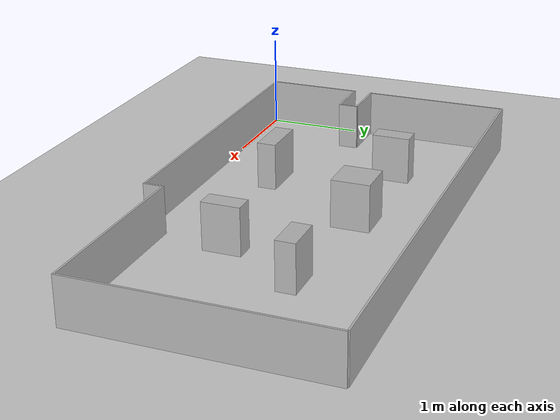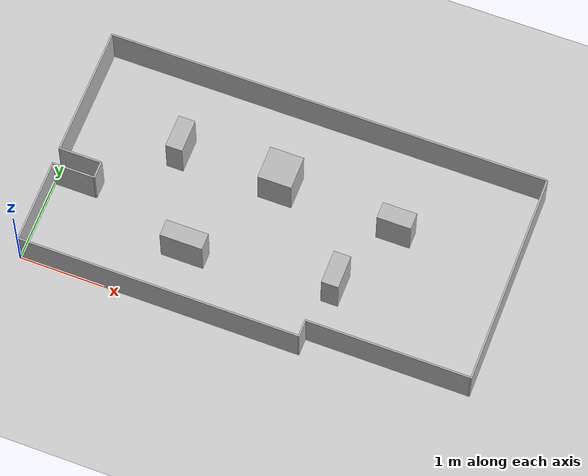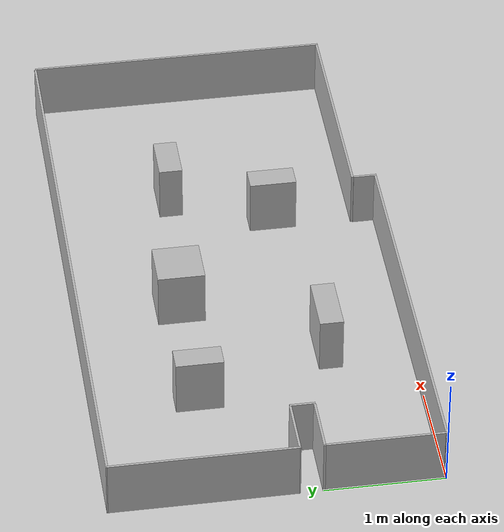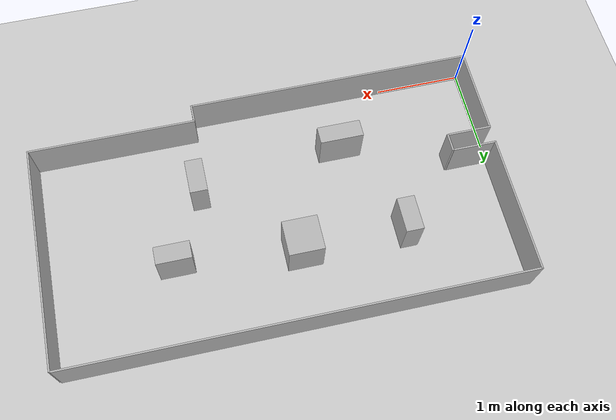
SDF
<sdf version="1.4">
  <world name="default">

    <scene>
      <ambient>0.4 0.4 0.4 1</ambient>
      <background>0.7 0.7 0.7 1</background>
      <shadows>true</shadows>
    </scene>

    <!-- A global light source -->
    <include>
      <uri>model://sun</uri>
    </include>

    <!-- A ground plane -->
    <include>
      <uri>model://ground_plane</uri>
    </include>

    <!-- The map -->
    <include>
        <uri>model://ttk4192_world</uri>
    </include>

    <physics type="ode">
      <real_time_update_rate>1000.0</real_time_update_rate>
      <max_step_size>0.001</max_step_size>
      <real_time_factor>1</real_time_factor>
      <ode>
        <solver>
          <type>quick</type>
          <iters>150</iters>
          <precon_iters>0</precon_iters>
          <sor>1.400000</sor>
          <use_dynamic_moi_rescaling>1</use_dynamic_moi_rescaling>
        </solver>
        <constraints>
          <cfm>0.00001</cfm>
          <erp>0.2</erp>
          <contact_max_correcting_vel>2000.000000</contact_max_correcting_vel>
          <contact_surface_layer>0.01000</contact_surface_layer>
        </constraints>
      </ode>
    </physics>
  </world>

</sdf>

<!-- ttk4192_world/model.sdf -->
<sdf version="1.5">
  <model name="my_model">
    <static>true</static>

    <link name="wall1">
      <pose>1.65 0.01 0.25 0 0 0</pose>
      <visual name="visual">
        <geometry><box><size>3.3 0.02 0.5</size></box></geometry>
        <material>
          <script>
            <uri>model://ttk4192_world/materials/scripts/wall.material</uri>
            <name>MyTexture/WallMaterial</name>
          </script>
        </material>
      </visual>
      <collision name="collision">
        <geometry><box><size>3.3 0.02 0.5</size></box></geometry>
      </collision>
    </link>

    <link name="wall2">
      <pose>3.31 0.1 0.25 0 0 0</pose>
      <visual name="visual">
        <geometry><box><size>0.02 0.2 0.5</size></box></geometry>
        <material>
          <script>
            <uri>model://ttk4192_world/materials/scripts/wall.material</uri>
            <name>MyTexture/WallMaterial</name>
          </script>
        </material>
      </visual>
      <collision name="collision">
        <geometry><box><size>0.02 0.2 0.5</size></box></geometry>
      </collision>
    </link>

    <link name="wall3">
      <pose>4.26 0.21 0.25 0 0 0</pose>
      <visual name="visual">
        <geometry><box><size>1.91 0.02 0.5</size></box></geometry>
        <material>
          <script>
            <uri>model://ttk4192_world/materials/scripts/wall.material</uri>
            <name>MyTexture/WallMaterial</name>
          </script>
        </material>
      </visual>
      <collision name="collision">
        <geometry><box><size>1.91 0.02 0.5</size></box></geometry>
      </collision>
    </link>

    <link name="wall4">
      <pose>5.22 1.475 0.25 0 0 0</pose>
      <visual name="visual">
        <geometry><box><size>0.02 2.55 0.5</size></box></geometry>
        <material>
          <script>
            <uri>model://ttk4192_world/materials/scripts/wall.material</uri>
            <name>MyTexture/WallMaterial</name>
          </script>
        </material>
      </visual>
      <collision name="collision">
        <geometry><box><size>0.02 2.55 0.5</size></box></geometry>
      </collision>
    </link>

    <link name="wall5">
      <pose>2.605 2.75 0.25 0 0 0</pose>
      <visual name="visual">
        <geometry><box><size>5.21 0.02 0.5</size></box></geometry>
        <material>
          <script>
            <uri>model://ttk4192_world/materials/scripts/wall.material</uri>
            <name>MyTexture/WallMaterial</name>
          </script>
        </material>
      </visual>
      <collision name="collision">
        <geometry><box><size>5.21 0.02 0.5</size></box></geometry>
      </collision>
    </link>

  <link name="wall6">
      <pose>0.01 1.975 0.25 0 0 0</pose>
      <visual name="visual">
        <geometry><box><size>0.02 1.55 0.5</size></box></geometry>
        <material>
          <script>
            <uri>model://ttk4192_world/materials/scripts/wall.material</uri>
            <name>MyTexture/WallMaterial</name>
          </script>
        </material>
      </visual>
      <collision name="collision">
        <geometry><box><size>0.02 1.55 0.5</size></box></geometry>
      </collision>
    </link>

    <link name="wall7">
      <pose>0.25 1.2 0.25 0 0 0</pose>
      <visual name="visual">
        <geometry><box><size>0.5 0.02 0.5</size></box></geometry>
        <material>
          <script>
            <uri>model://ttk4192_world/materials/scripts/wall.material</uri>
            <name>MyTexture/WallMaterial</name>
          </script>
        </material>
      </visual>
      <collision name="collision">
        <geometry><box><size>0.5 0.02 0.5</size></box></geometry>
      </collision>
    </link>

    <link name="wall8">
      <pose>0.51 1.1 0.25 0 0 0</pose>
      <visual name="visual">
        <geometry><box><size>0.02 0.21 0.5</size></box></geometry>
        <material>
          <script>
            <uri>model://ttk4192_world/materials/scripts/wall.material</uri>
            <name>MyTexture/WallMaterial</name>
          </script>
        </material>
      </visual>
      <collision name="collision">
        <geometry><box><size>0.02 0.21 0.5</size></box></geometry>
      </collision>
    </link>

    <link name="wall9">
      <pose>0.25 1 0.25 0 0 0</pose>
      <visual name="visual">
        <geometry><box><size>0.5 0.02 0.5</size></box></geometry>
        <material>
          <script>
            <uri>model://ttk4192_world/materials/scripts/wall.material</uri>
            <name>MyTexture/WallMaterial</name>
          </script>
        </material>
      </visual>
      <collision name="collision">
        <geometry><box><size>0.5 0.02 0.5</size></box></geometry>
      </collision>
    </link>

    <link name="wall10">
      <pose>0.01 0.5 0.25 0 0 0</pose>
      <visual name="visual">
        <geometry><box><size>0.02 1 0.5</size></box></geometry>
        <material>
          <script>
            <uri>model://ttk4192_world/materials/scripts/wall.material</uri>
            <name>MyTexture/WallMaterial</name>
          </script>
        </material>
      </visual>
      <collision name="collision">
        <geometry><box><size>0.02 1 0.5</size></box></geometry>
      </collision>
    </link>

    <link name="box1">
      <pose>1.2 1.85 0.25 0 0 0</pose>
      <visual name="visual">
        <geometry><box><size>0.2 0.4 0.5</size></box></geometry>
         <material>
          <script>
            <uri>model://ttk4192_world/materials/scripts/box.material</uri>
            <name>MyTexture/BoxMaterial</name>
          </script>
        </material>
      </visual>
      <collision name="collision">
        <geometry><box><size>0.2 0.4 0.5</size></box></geometry>
      </collision>
    </link>

    <link name="box2">
      <pose>2.4 1.85 0.25 0 0 0</pose>
      <visual name="visual">
        <geometry><box><size>0.4 0.4 0.5</size></box></geometry>
        <material>
          <script>
            <uri>model://ttk4192_world/materials/scripts/box.material</uri>
            <name>MyTexture/BoxMaterial</name>
          </script>
        </material>
      </visual>
      <collision name="collision">
        <geometry><box><size>0.4 0.4 0.5</size></box></geometry>
      </collision>
    </link>

    <link name="valve0">
      <pose>1.7 0.7 0.25 0 0 0</pose>
      <visual name="visual">
        <geometry><box><size>0.5 0.2 0.5</size></box></geometry>
      </visual>
      <collision name="collision">
        <geometry><box><size>0.5 0.2 0.5</size></box></geometry>
      </collision>
    </link>

    <link name="valve1">
      <pose>3.41 0.9 0.25 0 0 0</pose>
      <visual name="visual">
        <geometry><box><size>0.2 0.4 0.5</size></box></geometry>
      </visual>
      <collision name="collision">
        <geometry><box><size>0.2 0.4 0.5</size></box></geometry>
      </collision>
    </link>

    <link name="pump1">
      <pose>3.81 1.75 0.25 0 0 0</pose>
      <visual name="visual">
        <geometry><box><size>0.4 0.2 0.5</size></box></geometry>
      </visual>
      <collision name="collision">
        <geometry><box><size>0.4 0.2 0.5</size></box></geometry>
      </collision>
    </link>

  </model>
</sdf>
